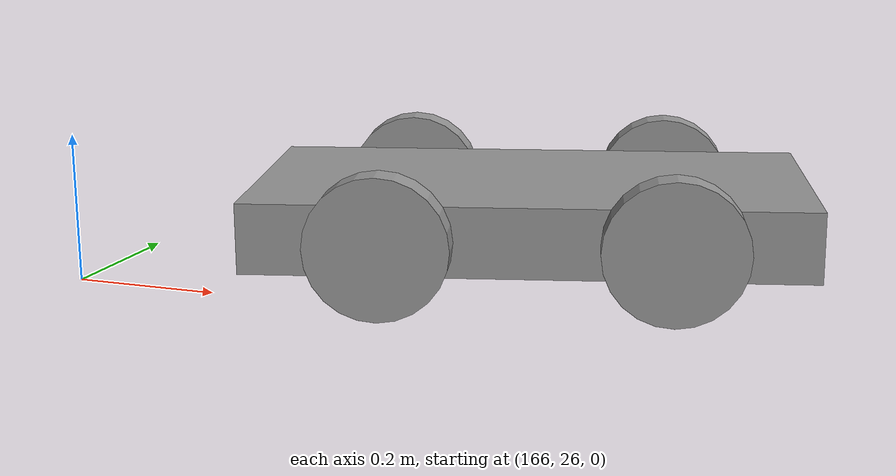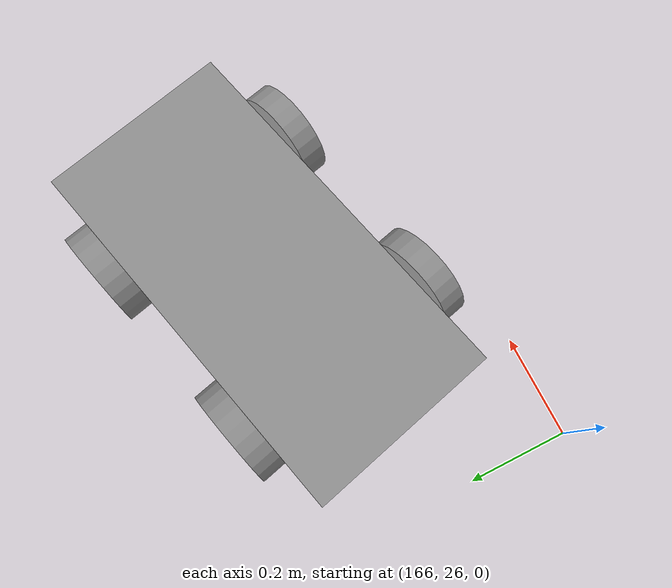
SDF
<sdf version="1.7">
 <world name="default">
  <model name="four-wheels-robot_2">
   <link name="link_0">
    <inertial>
     <mass>1</mass>
     <inertia>
      <ixx>0.166667</ixx>
      <ixy>0</ixy>
      <ixz>0</ixz>
      <iyy>0.166667</iyy>
      <iyz>0</iyz>
      <izz>0.166667</izz>
     </inertia>
    </inertial>
    <pose>-0.117983 0.041462 -0.32 0 -0 0</pose>
    <visual name="visual">
     <geometry><box><size>0.8 0.4 0.1</size></box></geometry>
     <material>
      <lighting>1</lighting>
      <script><uri>file://media/materials/scripts/gazebo.material</uri><name>Gazebo/Grey</name></script>
      <shader type="pixel"><normal_map>__default__</normal_map></shader>
      <ambient>0.3 0.3 0.3 1</ambient>
      <diffuse>0.7 0.7 0.7 1</diffuse>
      <specular>0.01 0.01 0.01 1</specular>
      <emissive>0 0 0 1</emissive>
     </material>
    </visual>
    <collision name="collision">
     <geometry><box><size>0.8 0.4 0.1</size></box></geometry>
     <surface>
      <friction>
       <ode><mu>1</mu><mu2>1</mu2><fdir1>0 0 0</fdir1><slip1>0</slip1><slip2>0</slip2></ode>
       <torsional>
        <coefficient>1</coefficient>
        <patch_radius>0</patch_radius>
        <surface_radius>0</surface_radius>
        <use_patch_radius>1</use_patch_radius>
        <ode><slip>0</slip></ode>
       </torsional>
      </friction>
      <bounce><restitution_coefficient>0</restitution_coefficient><threshold>1e+06</threshold></bounce>
      <contact>
       <collide_without_contact>0</collide_without_contact>
       <collide_without_contact_bitmask>1</collide_without_contact_bitmask>
       <collide_bitmask>1</collide_bitmask>
       <ode>
        <soft_cfm>0</soft_cfm>
        <soft_erp>0.2</soft_erp>
        <kp>1e+13</kp>
        <kd>1</kd>
        <max_vel>0.01</max_vel>
        <min_depth>0</min_depth>
       </ode>
       <bullet>
        <split_impulse>1</split_impulse>
        <split_impulse_penetration_threshold>-0.01</split_impulse_penetration_threshold>
        <soft_cfm>0</soft_cfm>
        <soft_erp>0.2</soft_erp>
        <kp>1e+13</kp>
        <kd>1</kd>
       </bullet>
      </contact>
     </surface>
    </collision>
   </link>
   <link name="link_1">
    <inertial>
     <mass>1</mass>
     <inertia><ixx>0.145833</ixx><ixy>0</ixy><ixz>0</ixz><iyy>0.145833</iyy><iyz>0</iyz><izz>0.125</izz></inertia>
    </inertial>
    <pose>-0.317983 -0.183538 -0.32 1.5708 -0 0</pose>
    <visual name="visual">
     <geometry><cylinder><radius>0.1</radius><length>0.05</length></cylinder></geometry>
     <material>
      <lighting>1</lighting>
      <script><uri>file://media/materials/scripts/gazebo.material</uri><name>Gazebo/Grey</name></script>
      <shader type="pixel"><normal_map>__default__</normal_map></shader>
      <ambient>0.3 0.3 0.3 1</ambient>
      <diffuse>0.7 0.7 0.7 1</diffuse>
      <specular>0.01 0.01 0.01 1</specular>
      <emissive>0 0 0 1</emissive>
     </material>
    </visual>
    <collision name="collision">
     <geometry><cylinder><radius>0.1</radius><length>0.05</length></cylinder></geometry>
     <surface>
      <friction>
       <ode><mu>1</mu><mu2>1</mu2><fdir1>0 0 0</fdir1><slip1>0</slip1><slip2>0</slip2></ode>
       <torsional>
        <coefficient>1</coefficient>
        <patch_radius>0</patch_radius>
        <surface_radius>0</surface_radius>
        <use_patch_radius>1</use_patch_radius>
        <ode><slip>0</slip></ode>
       </torsional>
      </friction>
      <bounce><restitution_coefficient>0</restitution_coefficient><threshold>1e+06</threshold></bounce>
      <contact>
       <collide_without_contact>0</collide_without_contact>
       <collide_without_contact_bitmask>1</collide_without_contact_bitmask>
       <collide_bitmask>1</collide_bitmask>
       <ode>
        <soft_cfm>0</soft_cfm>
        <soft_erp>0.2</soft_erp>
        <kp>1e+13</kp>
        <kd>1</kd>
        <max_vel>0.01</max_vel>
        <min_depth>0</min_depth>
       </ode>
       <bullet>
        <split_impulse>1</split_impulse>
        <split_impulse_penetration_threshold>-0.01</split_impulse_penetration_threshold>
        <soft_cfm>0</soft_cfm>
        <soft_erp>0.2</soft_erp>
        <kp>1e+13</kp>
        <kd>1</kd>
       </bullet>
      </contact>
     </surface>
    </collision>
   </link>
   <link name="link_1_clone">
    <inertial>
     <mass>1</mass>
     <inertia><ixx>0.145833</ixx><ixy>0</ixy><ixz>0</ixz><iyy>0.145833</iyy><iyz>0</iyz><izz>0.125</izz></inertia>
    </inertial>
    <pose>0.082017 -0.183538 -0.32 1.5708 -0 0</pose>
    <visual name="visual">
     <geometry><cylinder><radius>0.1</radius><length>0.05</length></cylinder></geometry>
     <material>
      <lighting>1</lighting>
      <script><uri>file://media/materials/scripts/gazebo.material</uri><name>Gazebo/Grey</name></script>
      <shader type="pixel"><normal_map>__default__</normal_map></shader>
      <ambient>0.3 0.3 0.3 1</ambient>
      <diffuse>0.7 0.7 0.7 1</diffuse>
      <specular>0.01 0.01 0.01 1</specular>
      <emissive>0 0 0 1</emissive>
     </material>
    </visual>
    <collision name="collision">
     <geometry><cylinder><radius>0.1</radius><length>0.05</length></cylinder></geometry>
     <surface>
      <friction>
       <ode><mu>1</mu><mu2>1</mu2><fdir1>0 0 0</fdir1><slip1>0</slip1><slip2>0</slip2></ode>
       <torsional>
        <coefficient>1</coefficient>
        <patch_radius>0</patch_radius>
        <surface_radius>0</surface_radius>
        <use_patch_radius>1</use_patch_radius>
        <ode><slip>0</slip></ode>
       </torsional>
      </friction>
      <bounce><restitution_coefficient>0</restitution_coefficient><threshold>1e+06</threshold></bounce>
      <contact>
       <collide_without_contact>0</collide_without_contact>
       <collide_without_contact_bitmask>1</collide_without_contact_bitmask>
       <collide_bitmask>1</collide_bitmask>
       <ode>
        <soft_cfm>0</soft_cfm>
        <soft_erp>0.2</soft_erp>
        <kp>1e+13</kp>
        <kd>1</kd>
        <max_vel>0.01</max_vel>
        <min_depth>0</min_depth>
       </ode>
       <bullet>
        <split_impulse>1</split_impulse>
        <split_impulse_penetration_threshold>-0.01</split_impulse_penetration_threshold>
        <soft_cfm>0</soft_cfm>
        <soft_erp>0.2</soft_erp>
        <kp>1e+13</kp>
        <kd>1</kd>
       </bullet>
      </contact>
     </surface>
    </collision>
   </link>
   <link name="link_1_clone_0">
    <inertial>
     <mass>1</mass>
     <inertia><ixx>0.145833</ixx><ixy>0</ixy><ixz>0</ixz><iyy>0.145833</iyy><iyz>0</iyz><izz>0.125</izz></inertia>
    </inertial>
    <pose>0.082017 0.266462 -0.32 1.5708 -0 0</pose>
    <visual name="visual">
     <geometry><cylinder><radius>0.1</radius><length>0.05</length></cylinder></geometry>
     <material>
      <lighting>1</lighting>
      <script><uri>file://media/materials/scripts/gazebo.material</uri><name>Gazebo/Grey</name></script>
      <shader type="pixel"><normal_map>__default__</normal_map></shader>
      <ambient>0.3 0.3 0.3 1</ambient>
      <diffuse>0.7 0.7 0.7 1</diffuse>
      <specular>0.01 0.01 0.01 1</specular>
      <emissive>0 0 0 1</emissive>
     </material>
    </visual>
    <collision name="collision">
     <geometry><cylinder><radius>0.1</radius><length>0.05</length></cylinder></geometry>
     <surface>
      <friction>
       <ode><mu>1</mu><mu2>1</mu2><fdir1>0 0 0</fdir1><slip1>0</slip1><slip2>0</slip2></ode>
       <torsional>
        <coefficient>1</coefficient>
        <patch_radius>0</patch_radius>
        <surface_radius>0</surface_radius>
        <use_patch_radius>1</use_patch_radius>
        <ode><slip>0</slip></ode>
       </torsional>
      </friction>
      <bounce><restitution_coefficient>0</restitution_coefficient><threshold>1e+06</threshold></bounce>
      <contact>
       <collide_without_contact>0</collide_without_contact>
       <collide_without_contact_bitmask>1</collide_without_contact_bitmask>
       <collide_bitmask>1</collide_bitmask>
       <ode>
        <soft_cfm>0</soft_cfm>
        <soft_erp>0.2</soft_erp>
        <kp>1e+13</kp>
        <kd>1</kd>
        <max_vel>0.01</max_vel>
        <min_depth>0</min_depth>
       </ode>
       <bullet>
        <split_impulse>1</split_impulse>
        <split_impulse_penetration_threshold>-0.01</split_impulse_penetration_threshold>
        <soft_cfm>0</soft_cfm>
        <soft_erp>0.2</soft_erp>
        <kp>1e+13</kp>
        <kd>1</kd>
       </bullet>
      </contact>
     </surface>
    </collision>
   </link>
   <link name="link_1_clone_1">
    <inertial>
     <mass>1</mass>
     <inertia><ixx>0.145833</ixx><ixy>0</ixy><ixz>0</ixz><iyy>0.145833</iyy><iyz>0</iyz><izz>0.125</izz></inertia>
    </inertial>
    <pose>-0.317983 0.266462 -0.32 1.5708 -0 0</pose>
    <visual name="visual">
     <geometry><cylinder><radius>0.1</radius><length>0.05</length></cylinder></geometry>
     <material>
      <lighting>1</lighting>
      <script><uri>file://media/materials/scripts/gazebo.material</uri><name>Gazebo/Grey</name></script>
      <shader type="pixel"><normal_map>__default__</normal_map></shader>
      <ambient>0.3 0.3 0.3 1</ambient>
      <diffuse>0.7 0.7 0.7 1</diffuse>
      <specular>0.01 0.01 0.01 1</specular>
      <emissive>0 0 0 1</emissive>
     </material>
    </visual>
    <collision name="collision">
     <geometry><cylinder><radius>0.1</radius><length>0.05</length></cylinder></geometry>
     <surface>
      <friction>
       <ode><mu>1</mu><mu2>1</mu2><fdir1>0 0 0</fdir1><slip1>0</slip1><slip2>0</slip2></ode>
       <torsional>
        <coefficient>1</coefficient>
        <patch_radius>0</patch_radius>
        <surface_radius>0</surface_radius>
        <use_patch_radius>1</use_patch_radius>
        <ode><slip>0</slip></ode>
       </torsional>
      </friction>
      <bounce><restitution_coefficient>0</restitution_coefficient><threshold>1e+06</threshold></bounce>
      <contact>
       <collide_without_contact>0</collide_without_contact>
       <collide_without_contact_bitmask>1</collide_without_contact_bitmask>
       <collide_bitmask>1</collide_bitmask>
       <ode>
        <soft_cfm>0</soft_cfm>
        <soft_erp>0.2</soft_erp>
        <kp>1e+13</kp>
        <kd>1</kd>
        <max_vel>0.01</max_vel>
        <min_depth>0</min_depth>
       </ode>
       <bullet>
        <split_impulse>1</split_impulse>
        <split_impulse_penetration_threshold>-0.01</split_impulse_penetration_threshold>
        <soft_cfm>0</soft_cfm>
        <soft_erp>0.2</soft_erp>
        <kp>1e+13</kp>
        <kd>1</kd>
       </bullet>
      </contact>
     </surface>
    </collision>
   </link>
   <joint name="link_0_JOINT_1" type="revolute">
    <parent>link_0</parent>
    <child>link_1</child>
    <axis>
     <xyz>1 0 0</xyz>
     <limit>
      <lower>-1.79769e+308</lower>
      <upper>1.79769e+308</upper>
      <effort>-1</effort>
      <velocity>-1</velocity>
     </limit>
     <dynamics>
      <spring_reference>0</spring_reference>
      <spring_stiffness>0</spring_stiffness>
      <damping>0</damping>
     </dynamics>
    </axis>
    <physics>
     <ode><limit><cfm>0</cfm><erp>0.2</erp></limit><suspension><cfm>0</cfm><erp>0.2</erp></suspension></ode>
    </physics>
   </joint>
   <joint name="link_0_JOINT_2" type="revolute">
    <parent>link_0</parent>
    <child>link_1_clone</child>
    <axis>
     <xyz>1 0 0</xyz>
     <limit>
      <lower>-1.79769e+308</lower>
      <upper>1.79769e+308</upper>
      <effort>-1</effort>
      <velocity>-1</velocity>
     </limit>
     <dynamics>
      <spring_reference>0</spring_reference>
      <spring_stiffness>0</spring_stiffness>
      <damping>0</damping>
     </dynamics>
    </axis>
    <physics>
     <ode><limit><cfm>0</cfm><erp>0.2</erp></limit><suspension><cfm>0</cfm><erp>0.2</erp></suspension></ode>
    </physics>
   </joint>
   <joint name="link_0_JOINT_3" type="revolute">
    <parent>link_0</parent>
    <child>link_1_clone_0</child>
    <axis>
     <xyz>1 0 0</xyz>
     <limit>
      <lower>-1.79769e+308</lower>
      <upper>1.79769e+308</upper>
      <effort>-1</effort>
      <velocity>-1</velocity>
     </limit>
     <dynamics>
      <spring_reference>0</spring_reference>
      <spring_stiffness>0</spring_stiffness>
      <damping>0</damping>
     </dynamics>
    </axis>
    <physics>
     <ode><limit><cfm>0</cfm><erp>0.2</erp></limit><suspension><cfm>0</cfm><erp>0.2</erp></suspension></ode>
    </physics>
   </joint>
   <joint name="link_0_JOINT_4" type="revolute">
    <parent>link_0</parent>
    <child>link_1_clone_1</child>
    <axis>
     <xyz>1 0 0</xyz>
     <limit>
      <lower>-1.79769e+308</lower>
      <upper>1.79769e+308</upper>
      <effort>-1</effort>
      <velocity>-1</velocity>
     </limit>
     <dynamics>
      <spring_reference>0</spring_reference>
      <spring_stiffness>0</spring_stiffness>
      <damping>0</damping>
     </dynamics>
    </axis>
    <physics>
     <ode><limit><cfm>0</cfm><erp>0.2</erp></limit><suspension><cfm>0</cfm><erp>0.2</erp></suspension></ode>
    </physics>
   </joint>
   <static>0</static>
   <pose>166.65 26.3715 0.37 0 -0 0.253262</pose>
  </model>
 </world>
</sdf>
